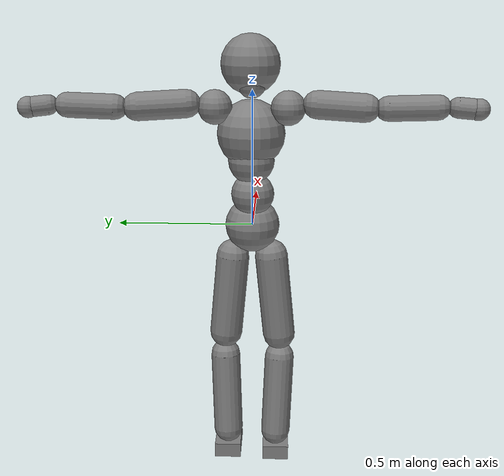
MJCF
<mujoco model="smpl">
  <compiler angle="radian" />
  <default>
    <motor ctrlrange="-1 1" ctrllimited="true" />
    <geom condim="1" friction="1.0 0.05 0.05" solimp=".9 .99 .003" solref=".015 1" />
    <joint limited="true" solimplimit="0 .99 .01" />
    <site size=".04" group="3" />
    <default class="force-torque">
      <site type="box" size=".01 .01 .02" rgba="1 0 0 1" />
    </default>
    <default class="touch">
      <site type="capsule" rgba="0 0 1 .3" />
    </default>
  </default>
  <worldbody>
    <body name="Pelvis" pos="0.000000 0.000000 0.000000">
      <freejoint name="Pelvis" />
      <geom type="sphere" contype="1" conaffinity="1" density="1415.961434" size="0.100980" pos="0.000000 0.000000 0.000000" />
      <body name="L_Hip" pos="-0.006936 0.070890 -0.093228">
        <joint name="L_Hip_x" type="hinge" pos="0 0 0" axis="1 0 0" actuatorfrcrange="-300 300" stiffness="500" damping="50" armature="0.02" range="-0.5236 1.5708" />
        <joint name="L_Hip_y" type="hinge" pos="0 0 0" axis="0 1 0" actuatorfrcrange="-300 300" stiffness="500" damping="50" armature="0.02" range="-2.4435 1.0472" />
        <joint name="L_Hip_z" type="hinge" pos="0 0 0" axis="0 0 1" actuatorfrcrange="-300 300" stiffness="500" damping="50" armature="0.02" range="-0.6109 1.0472" />
        <geom type="capsule" contype="1" conaffinity="1" density="1145.967397" fromto="-0.000321 0.002449 -0.026789 -0.004039 0.030788 -0.336780" size="0.061710" />
        <body name="L_Knee" pos="-0.004590 0.034986 -0.382704">
          <joint name="L_Knee_x" type="hinge" pos="0 0 0" axis="1 0 0" actuatorfrcrange="-200 200" stiffness="500" damping="50" armature="0.02" range="-0.5236 0.5236" />
          <joint name="L_Knee_y" type="hinge" pos="0 0 0" axis="0 1 0" actuatorfrcrange="-200 200" stiffness="500" damping="50" armature="0.02" range="0 2.7925" />
          <joint name="L_Knee_z" type="hinge" pos="0 0 0" axis="0 0 1" actuatorfrcrange="-200 200" stiffness="500" damping="50" armature="0.02" range="-0.5236 0.5236" />
          <geom type="capsule" contype="1" conaffinity="1" density="956.295857" fromto="-0.005349 -0.001665 -0.048715 -0.039225 -0.012207 -0.357245" size="0.056100" />
          <body name="L_Ankle" pos="-0.044574 -0.013872 -0.405960">
            <joint name="L_Ankle_x" type="hinge" pos="0 0 0" axis="1 0 0" actuatorfrcrange="-100 100" stiffness="400" damping="40" armature="0.02" range="-0.5236 0.5236" />
            <joint name="L_Ankle_y" type="hinge" pos="0 0 0" axis="0 1 0" actuatorfrcrange="-100 100" stiffness="400" damping="40" armature="0.02" range="-0.9599 0.9599" />
            <joint name="L_Ankle_z" type="hinge" pos="0 0 0" axis="0 0 1" actuatorfrcrange="-100 100" stiffness="400" damping="40" armature="0.02" range="-0.6981 0.6981" />
            <geom type="box" contype="1" conaffinity="1" density="778.778789" pos="0.035292 0.002448 -0.028458" size="0.081600 0.050490 0.028050" quat="1.0000 0.0000 0.0000 0.0000" />
            <body name="L_Toe" pos="0.121686 0.012648 -0.026316">
              <joint name="L_Toe_x" type="hinge" pos="0 0 0" axis="1 0 0" actuatorfrcrange="-75 75" stiffness="200" damping="20" armature="0.02" range="-0.5236 0.5236" />
              <joint name="L_Toe_y" type="hinge" pos="0 0 0" axis="0 1 0" actuatorfrcrange="-75 75" stiffness="200" damping="20" armature="0.02" range="-1.0472 1.0472" />
              <joint name="L_Toe_z" type="hinge" pos="0 0 0" axis="0 0 1" actuatorfrcrange="-75 75" stiffness="200" damping="20" armature="0.02" range="-0.5236 0.5236" />
              <geom type="box" contype="1" conaffinity="1" density="778.778789" pos="0.025704 -0.010200 -0.008160" size="0.028050 0.045900 0.020196" quat="1.0000 0.0000 0.0000 0.0000" />
            </body>
          </body>
        </body>
      </body>
      <body name="R_Hip" pos="-0.004386 -0.069054 -0.092310">
        <joint name="R_Hip_x" type="hinge" pos="0 0 0" axis="1 0 0" actuatorfrcrange="-300 300" stiffness="500" damping="50" armature="0.02" range="-1.5708 0.5236" />
        <joint name="R_Hip_y" type="hinge" pos="0 0 0" axis="0 1 0" actuatorfrcrange="-300 300" stiffness="500" damping="50" armature="0.02" range="-2.4435 1.0472" />
        <joint name="R_Hip_z" type="hinge" pos="0 0 0" axis="0 0 1" actuatorfrcrange="-300 300" stiffness="500" damping="50" armature="0.02" range="-1.0472 0.6109" />
        <geom type="capsule" contype="1" conaffinity="1" density="1146.326119" fromto="-0.000635 -0.002735 -0.027318 -0.007989 -0.034378 -0.343422" size="0.061710" />
        <body name="R_Knee" pos="-0.009078 -0.039066 -0.390252">
          <joint name="R_Knee_x" type="hinge" pos="0 0 0" axis="1 0 0" actuatorfrcrange="-200 200" stiffness="500" damping="50" armature="0.02" range="-0.5236 0.5236" />
          <joint name="R_Knee_y" type="hinge" pos="0 0 0" axis="0 1 0" actuatorfrcrange="-200 200" stiffness="500" damping="50" armature="0.02" range="0 2.7925" />
          <joint name="R_Knee_z" type="hinge" pos="0 0 0" axis="0 0 1" actuatorfrcrange="-200 200" stiffness="500" damping="50" armature="0.02" range="-0.5236 0.5236" />
          <geom type="capsule" contype="1" conaffinity="1" density="956.307180" fromto="-0.005178 0.001934 -0.048764 -0.037968 0.014182 -0.357604" size="0.056100" />
          <body name="R_Ankle" pos="-0.043146 0.016116 -0.406368">
            <joint name="R_Ankle_x" type="hinge" pos="0 0 0" axis="1 0 0" actuatorfrcrange="-100 100" stiffness="400" damping="40" armature="0.02" range="-0.5236 0.5236" />
            <joint name="R_Ankle_y" type="hinge" pos="0 0 0" axis="0 1 0" actuatorfrcrange="-100 100" stiffness="400" damping="40" armature="0.02" range="-0.9599 0.9599" />
            <joint name="R_Ankle_z" type="hinge" pos="0 0 0" axis="0 0 1" actuatorfrcrange="-100 100" stiffness="400" damping="40" armature="0.02" range="-0.6981 0.6981" />
            <geom type="box" contype="1" conaffinity="1" density="778.778789" pos="0.035292 -0.002448 -0.028458" size="0.081600 0.050490 0.028050" quat="1.0000 0.0000 0.0000 0.0000" />
            <body name="R_Toe" pos="0.121686 -0.012648 -0.026316">
              <joint name="R_Toe_x" type="hinge" pos="0 0 0" axis="1 0 0" actuatorfrcrange="-75 75" stiffness="200" damping="20" armature="0.02" range="-0.5236 0.5236" />
              <joint name="R_Toe_y" type="hinge" pos="0 0 0" axis="0 1 0" actuatorfrcrange="-75 75" stiffness="200" damping="20" armature="0.02" range="-1.0472 1.0472" />
              <joint name="R_Toe_z" type="hinge" pos="0 0 0" axis="0 0 1" actuatorfrcrange="-75 75" stiffness="200" damping="20" armature="0.02" range="-0.5236 0.5236" />
              <geom type="box" contype="1" conaffinity="1" density="778.778789" pos="0.025704 0.010200 -0.008160" size="0.028050 0.045900 0.020196" quat="1.0000 0.0000 0.0000 0.0000" />
            </body>
          </body>
        </body>
      </body>
      <body name="Torso" pos="-0.027234 -0.002550 0.111180">
        <joint name="Torso_x" type="hinge" pos="0 0 0" axis="1 0 0" actuatorfrcrange="-300 300" stiffness="1000" damping="100" armature="0.02" range="-1.0472 1.0472" />
        <joint name="Torso_y" type="hinge" pos="0 0 0" axis="0 1 0" actuatorfrcrange="-300 300" stiffness="1000" damping="100" armature="0.02" range="-1.0472 1.5708" />
        <joint name="Torso_z" type="hinge" pos="0 0 0" axis="0 0 1" actuatorfrcrange="-300 300" stiffness="1000" damping="100" armature="0.02" range="-0.8727 0.8727" />
        <geom type="sphere" contype="1" conaffinity="1" density="1415.961434" size="0.078540" pos="0.000112 0.000561 0.013790" />
        <body name="Spine" pos="0.001122 0.005610 0.137904">
          <joint name="Spine_x" type="hinge" pos="0 0 0" axis="1 0 0" actuatorfrcrange="-200 200" stiffness="1000" damping="100" armature="0.02" range="-1.0472 1.0472" />
          <joint name="Spine_y" type="hinge" pos="0 0 0" axis="0 1 0" actuatorfrcrange="-200 200" stiffness="1000" damping="100" armature="0.02" range="-1.0472 1.5708" />
          <joint name="Spine_z" type="hinge" pos="0 0 0" axis="0 0 1" actuatorfrcrange="-200 200" stiffness="1000" damping="100" armature="0.02" range="-0.8727 0.8727" />
          <geom type="sphere" contype="1" conaffinity="1" density="1415.961434" size="0.084150" pos="0.000000 0.000000 0.000000" />
          <body name="Chest" pos="0.025908 0.001530 0.053958">
            <joint name="Chest_x" type="hinge" pos="0 0 0" axis="1 0 0" actuatorfrcrange="-150 150" stiffness="1000" damping="100" armature="0.02" range="-1.0472 1.0472" />
            <joint name="Chest_y" type="hinge" pos="0 0 0" axis="0 1 0" actuatorfrcrange="-150 150" stiffness="1000" damping="100" armature="0.02" range="-1.0472 1.5708" />
            <joint name="Chest_z" type="hinge" pos="0 0 0" axis="0 0 1" actuatorfrcrange="-150 150" stiffness="1000" damping="100" armature="0.02" range="-0.8727 0.8727" />
            <geom type="sphere" contype="1" conaffinity="1" density="1415.961434" size="0.123420" pos="-0.008160 0.000000 0.040800" />
            <body name="Neck" pos="-0.043758 -0.002856 0.218178">
              <joint name="Neck_x" type="hinge" pos="0 0 0" axis="1 0 0" actuatorfrcrange="-75 75" stiffness="500" damping="50" armature="0.02" range="-0.8727 0.8727" />
              <joint name="Neck_y" type="hinge" pos="0 0 0" axis="0 1 0" actuatorfrcrange="-75 75" stiffness="500" damping="50" armature="0.02" range="-0.6981 1.0472" />
              <joint name="Neck_z" type="hinge" pos="0 0 0" axis="0 0 1" actuatorfrcrange="-75 75" stiffness="500" damping="50" armature="0.02" range="-0.7854 0.7854" />
              <geom type="sphere" contype="1" conaffinity="1" density="707.980717" size="0.050490" pos="0.020400 0.000000 0.000000" />
              <body name="Head" pos="0.052326 0.005304 0.066300">
                <joint name="Head_x" type="hinge" pos="0 0 0" axis="1 0 0" actuatorfrcrange="-25 25" stiffness="200" damping="20" armature="0.02" range="-0.8727 0.8727" />
                <joint name="Head_y" type="hinge" pos="0 0 0" axis="0 1 0" actuatorfrcrange="-25 25" stiffness="200" damping="20" armature="0.02" range="-0.6981 1.0472" />
                <joint name="Head_z" type="hinge" pos="0 0 0" axis="0 0 1" actuatorfrcrange="-25 25" stiffness="200" damping="20" armature="0.02" range="-0.7854 0.7854" />
                <geom type="sphere" contype="1" conaffinity="1" density="707.980717" size="0.106590" pos="0.000000 0.000000 0.000000" />
              </body>
            </body>
            <body name="L_Thorax" pos="-0.034782 0.080376 0.124134">
              <joint name="L_Thorax_x" type="hinge" pos="0 0 0" axis="1 0 0" actuatorfrcrange="-200 200" stiffness="500" damping="50" armature="0.02" range="-0.6981 0.5236" />
              <joint name="L_Thorax_y" type="hinge" pos="0 0 0" axis="0 1 0" actuatorfrcrange="-200 200" stiffness="500" damping="50" armature="0.02" range="-0.5236 0.5236" />
              <joint name="L_Thorax_z" type="hinge" pos="0 0 0" axis="0 0 1" actuatorfrcrange="-200 200" stiffness="500" damping="50" armature="0.02" range="-0.5236 0.5236" />
              <geom type="sphere" contype="1" conaffinity="1" density="707.980717" size="0.061710" pos="-0.004539 0.046410 0.015555" />
              <body name="L_Shoulder" pos="-0.009078 0.092820 0.031110">
                <joint name="L_Shoulder_x" type="hinge" pos="0 0 0" axis="1 0 0" actuatorfrcrange="-150 150" stiffness="400" damping="40" armature="0.02" range="-2.3562 1.5708" />
                <joint name="L_Shoulder_y" type="hinge" pos="0 0 0" axis="0 1 0" actuatorfrcrange="-150 150" stiffness="400" damping="40" armature="0.02" range="-1.5708 1.5708" />
                <joint name="L_Shoulder_z" type="hinge" pos="0 0 0" axis="0 0 1" actuatorfrcrange="-150 150" stiffness="400" damping="40" armature="0.02" range="-2.7925 1.0472" />
                <geom type="capsule" contype="1" conaffinity="1" density="758.969926" fromto="-0.005610 0.052958 -0.002611 -0.023842 0.225073 -0.011098" size="0.050490" />
                <body name="L_Elbow" pos="-0.028050 0.264792 -0.013056">
                  <joint name="L_Elbow_x" type="hinge" pos="0 0 0" axis="1 0 0" actuatorfrcrange="-100 100" stiffness="300" damping="30" armature="0.02" range="-0.5236 0.5236" />
                  <joint name="L_Elbow_y" type="hinge" pos="0 0 0" axis="0 1 0" actuatorfrcrange="-100 100" stiffness="300" damping="30" armature="0.02" range="-0.5236 0.5236" />
                  <joint name="L_Elbow_z" type="hinge" pos="0 0 0" axis="0 0 1" actuatorfrcrange="-100 100" stiffness="300" damping="30" armature="0.02" range="-2.7925 0" />
                  <geom type="capsule" contype="1" conaffinity="1" density="759.967182" fromto="-0.000184 0.038128 0.001377 -0.000918 0.203388 0.007344" size="0.044880" />
                  <body name="L_Wrist" pos="-0.001224 0.254184 0.009180">
                    <joint name="L_Wrist_x" type="hinge" pos="0 0 0" axis="1 0 0" actuatorfrcrange="-75 75" stiffness="200" damping="20" armature="0.02" range="-1.5708 1.5708" />
                    <joint name="L_Wrist_y" type="hinge" pos="0 0 0" axis="0 1 0" actuatorfrcrange="-75 75" stiffness="200" damping="20" armature="0.02" range="-1.5708 1.5708" />
                    <joint name="L_Wrist_z" type="hinge" pos="0 0 0" axis="0 0 1" actuatorfrcrange="-75 75" stiffness="200" damping="20" armature="0.02" range="-1.0472 1.0472" />
                    <geom type="capsule" contype="1" conaffinity="1" density="745.109154" fromto="-0.003060 0.017136 -0.001632 -0.012240 0.068544 -0.006630" size="0.035680" />
                    <body name="L_Hand" pos="-0.015198 0.085680 -0.008364">
                      <joint name="L_Hand_x" type="hinge" pos="0 0 0" axis="1 0 0" actuatorfrcrange="-50 50" stiffness="100" damping="10" armature="0.02" range="-1.5708 1.5708" />
                      <joint name="L_Hand_y" type="hinge" pos="0 0 0" axis="0 1 0" actuatorfrcrange="-50 50" stiffness="100" damping="10" armature="0.02" range="-1.5708 1.5708" />
                      <joint name="L_Hand_z" type="hinge" pos="0 0 0" axis="0 0 1" actuatorfrcrange="-50 50" stiffness="100" damping="10" armature="0.02" range="-1.5708 1.5708" />
                      <geom type="sphere" contype="1" conaffinity="1" density="707.980717" size="0.037811" pos="0.000000 0.000000 0.000000" />
                    </body>
                  </body>
                </body>
              </body>
            </body>
            <body name="R_Thorax" pos="-0.039372 -0.083436 0.121176">
              <joint name="R_Thorax_x" type="hinge" pos="0 0 0" axis="1 0 0" actuatorfrcrange="-200 200" stiffness="500" damping="50" armature="0.02" range="-0.5236 0.6981" />
              <joint name="R_Thorax_y" type="hinge" pos="0 0 0" axis="0 1 0" actuatorfrcrange="-200 200" stiffness="500" damping="50" armature="0.02" range="-0.5236 0.5236" />
              <joint name="R_Thorax_z" type="hinge" pos="0 0 0" axis="0 0 1" actuatorfrcrange="-200 200" stiffness="500" damping="50" armature="0.02" range="-0.5236 0.5236" />
              <geom type="sphere" contype="1" conaffinity="1" density="707.980717" size="0.061710" pos="-0.004641 -0.048960 0.016626" />
              <body name="R_Shoulder" pos="-0.009282 -0.097920 0.033252">
                <joint name="R_Shoulder_x" type="hinge" pos="0 0 0" axis="1 0 0" actuatorfrcrange="-150 150" stiffness="400" damping="40" armature="0.02" range="-1.5708 2.3562" />
                <joint name="R_Shoulder_y" type="hinge" pos="0 0 0" axis="0 1 0" actuatorfrcrange="-150 150" stiffness="400" damping="40" armature="0.02" range="-1.5708 1.5708" />
                <joint name="R_Shoulder_z" type="hinge" pos="0 0 0" axis="0 0 1" actuatorfrcrange="-150 150" stiffness="400" damping="40" armature="0.02" range="-1.0472 2.7925" />
                <geom type="capsule" contype="1" conaffinity="1" density="758.613297" fromto="-0.004366 -0.051755 -0.002713 -0.018554 -0.219958 -0.011531" size="0.050490" />
                <body name="R_Elbow" pos="-0.021828 -0.258774 -0.013566">
                  <joint name="R_Elbow_x" type="hinge" pos="0 0 0" axis="1 0 0" actuatorfrcrange="-100 100" stiffness="300" damping="30" armature="0.02" range="-0.5236 0.5236" />
                  <joint name="R_Elbow_y" type="hinge" pos="0 0 0" axis="0 1 0" actuatorfrcrange="-100 100" stiffness="300" damping="30" armature="0.02" range="-0.5236 0.5236" />
                  <joint name="R_Elbow_z" type="hinge" pos="0 0 0" axis="0 0 1" actuatorfrcrange="-100 100" stiffness="300" damping="30" armature="0.02" range="0 2.7925" />
                  <geom type="capsule" contype="1" conaffinity="1" density="760.296586" fromto="-0.000857 -0.039061 0.001193 -0.004570 -0.208325 0.006365" size="0.044880" />
                  <body name="R_Wrist" pos="-0.005712 -0.260406 0.007956">
                    <joint name="R_Wrist_x" type="hinge" pos="0 0 0" axis="1 0 0" actuatorfrcrange="-75 75" stiffness="200" damping="20" armature="0.02" range="-1.5708 1.5708" />
                    <joint name="R_Wrist_y" type="hinge" pos="0 0 0" axis="0 1 0" actuatorfrcrange="-75 75" stiffness="200" damping="20" armature="0.02" range="-1.5708 1.5708" />
                    <joint name="R_Wrist_z" type="hinge" pos="0 0 0" axis="0 0 1" actuatorfrcrange="-75 75" stiffness="200" damping="20" armature="0.02" range="-1.0472 1.0472" />
                    <geom type="capsule" contype="1" conaffinity="1" density="744.628667" fromto="-0.002142 -0.017238 -0.001224 -0.008466 -0.069054 -0.004998" size="0.036577" />
                    <body name="R_Hand" pos="-0.010506 -0.086292 -0.006222">
                      <joint name="R_Hand_x" type="hinge" pos="0 0 0" axis="1 0 0" actuatorfrcrange="-50 50" stiffness="100" damping="10" armature="0.02" range="-1.5708 1.5708" />
                      <joint name="R_Hand_y" type="hinge" pos="0 0 0" axis="0 1 0" actuatorfrcrange="-50 50" stiffness="100" damping="10" armature="0.02" range="-1.5708 1.5708" />
                      <joint name="R_Hand_z" type="hinge" pos="0 0 0" axis="0 0 1" actuatorfrcrange="-50 50" stiffness="100" damping="10" armature="0.02" range="-1.5708 1.5708" />
                      <geom type="sphere" contype="1" conaffinity="1" density="707.980717" size="0.038148" pos="0.000000 0.000000 0.000000" />
                    </body>
                  </body>
                </body>
              </body>
            </body>
          </body>
        </body>
      </body>
    </body>
  </worldbody>
  <actuator>
    <motor name="L_Hip_x" joint="L_Hip_x" gear="300" />
    <motor name="L_Hip_y" joint="L_Hip_y" gear="300" />
    <motor name="L_Hip_z" joint="L_Hip_z" gear="300" />
    <motor name="L_Knee_x" joint="L_Knee_x" gear="200" />
    <motor name="L_Knee_y" joint="L_Knee_y" gear="200" />
    <motor name="L_Knee_z" joint="L_Knee_z" gear="200" />
    <motor name="L_Ankle_x" joint="L_Ankle_x" gear="100" />
    <motor name="L_Ankle_y" joint="L_Ankle_y" gear="100" />
    <motor name="L_Ankle_z" joint="L_Ankle_z" gear="100" />
    <motor name="L_Toe_x" joint="L_Toe_x" gear="75" />
    <motor name="L_Toe_y" joint="L_Toe_y" gear="75" />
    <motor name="L_Toe_z" joint="L_Toe_z" gear="75" />
    <motor name="R_Hip_x" joint="R_Hip_x" gear="300" />
    <motor name="R_Hip_y" joint="R_Hip_y" gear="300" />
    <motor name="R_Hip_z" joint="R_Hip_z" gear="300" />
    <motor name="R_Knee_x" joint="R_Knee_x" gear="200" />
    <motor name="R_Knee_y" joint="R_Knee_y" gear="200" />
    <motor name="R_Knee_z" joint="R_Knee_z" gear="200" />
    <motor name="R_Ankle_x" joint="R_Ankle_x" gear="100" />
    <motor name="R_Ankle_y" joint="R_Ankle_y" gear="100" />
    <motor name="R_Ankle_z" joint="R_Ankle_z" gear="100" />
    <motor name="R_Toe_x" joint="R_Toe_x" gear="75" />
    <motor name="R_Toe_y" joint="R_Toe_y" gear="75" />
    <motor name="R_Toe_z" joint="R_Toe_z" gear="75" />
    <motor name="Torso_x" joint="Torso_x" gear="300" />
    <motor name="Torso_y" joint="Torso_y" gear="300" />
    <motor name="Torso_z" joint="Torso_z" gear="300" />
    <motor name="Spine_x" joint="Spine_x" gear="200" />
    <motor name="Spine_y" joint="Spine_y" gear="200" />
    <motor name="Spine_z" joint="Spine_z" gear="200" />
    <motor name="Chest_x" joint="Chest_x" gear="150" />
    <motor name="Chest_y" joint="Chest_y" gear="150" />
    <motor name="Chest_z" joint="Chest_z" gear="150" />
    <motor name="Neck_x" joint="Neck_x" gear="75" />
    <motor name="Neck_y" joint="Neck_y" gear="75" />
    <motor name="Neck_z" joint="Neck_z" gear="75" />
    <motor name="Head_x" joint="Head_x" gear="25" />
    <motor name="Head_y" joint="Head_y" gear="25" />
    <motor name="Head_z" joint="Head_z" gear="25" />
    <motor name="L_Thorax_x" joint="L_Thorax_x" gear="200" />
    <motor name="L_Thorax_y" joint="L_Thorax_y" gear="200" />
    <motor name="L_Thorax_z" joint="L_Thorax_z" gear="200" />
    <motor name="L_Shoulder_x" joint="L_Shoulder_x" gear="150" />
    <motor name="L_Shoulder_y" joint="L_Shoulder_y" gear="150" />
    <motor name="L_Shoulder_z" joint="L_Shoulder_z" gear="150" />
    <motor name="L_Elbow_x" joint="L_Elbow_x" gear="100" />
    <motor name="L_Elbow_y" joint="L_Elbow_y" gear="100" />
    <motor name="L_Elbow_z" joint="L_Elbow_z" gear="100" />
    <motor name="L_Wrist_x" joint="L_Wrist_x" gear="75" />
    <motor name="L_Wrist_y" joint="L_Wrist_y" gear="75" />
    <motor name="L_Wrist_z" joint="L_Wrist_z" gear="75" />
    <motor name="L_Hand_x" joint="L_Hand_x" gear="50" />
    <motor name="L_Hand_y" joint="L_Hand_y" gear="50" />
    <motor name="L_Hand_z" joint="L_Hand_z" gear="50" />
    <motor name="R_Thorax_x" joint="R_Thorax_x" gear="200" />
    <motor name="R_Thorax_y" joint="R_Thorax_y" gear="200" />
    <motor name="R_Thorax_z" joint="R_Thorax_z" gear="200" />
    <motor name="R_Shoulder_x" joint="R_Shoulder_x" gear="150" />
    <motor name="R_Shoulder_y" joint="R_Shoulder_y" gear="150" />
    <motor name="R_Shoulder_z" joint="R_Shoulder_z" gear="150" />
    <motor name="R_Elbow_x" joint="R_Elbow_x" gear="100" />
    <motor name="R_Elbow_y" joint="R_Elbow_y" gear="100" />
    <motor name="R_Elbow_z" joint="R_Elbow_z" gear="100" />
    <motor name="R_Wrist_x" joint="R_Wrist_x" gear="75" />
    <motor name="R_Wrist_y" joint="R_Wrist_y" gear="75" />
    <motor name="R_Wrist_z" joint="R_Wrist_z" gear="75" />
    <motor name="R_Hand_x" joint="R_Hand_x" gear="50" />
    <motor name="R_Hand_y" joint="R_Hand_y" gear="50" />
    <motor name="R_Hand_z" joint="R_Hand_z" gear="50" />
  </actuator>
</mujoco>
